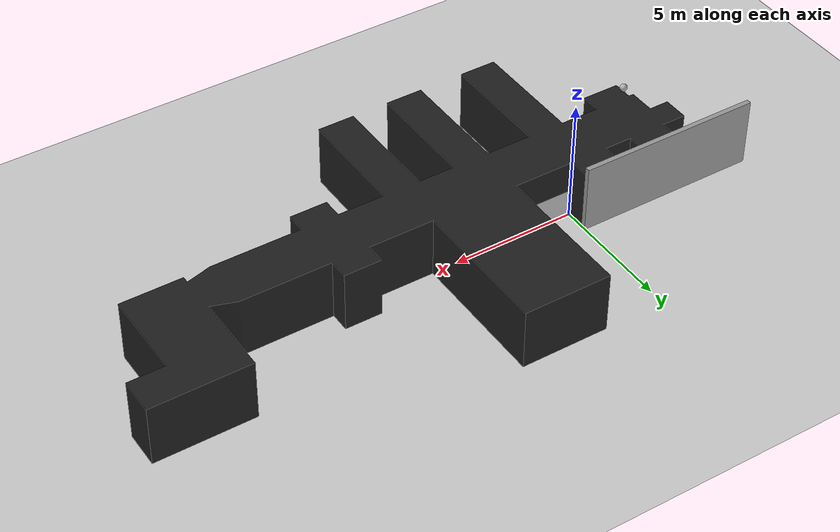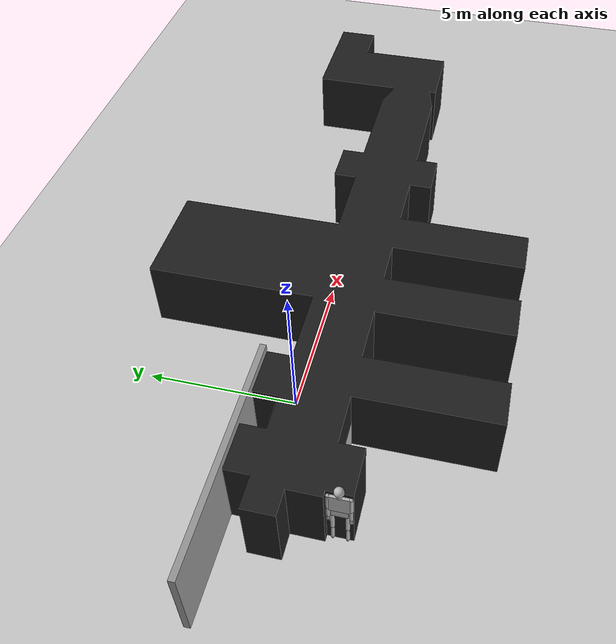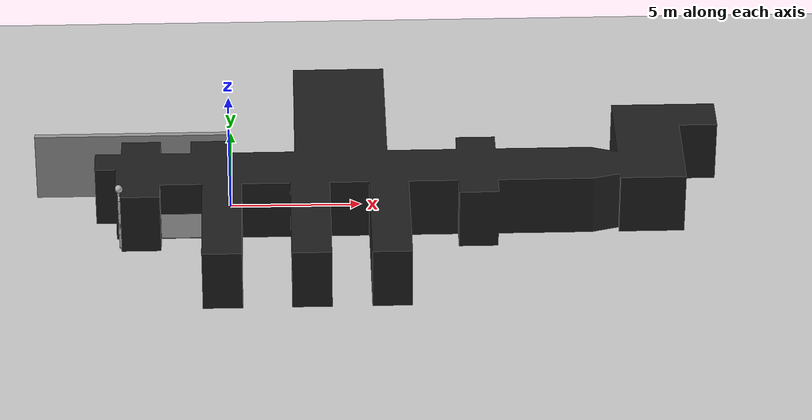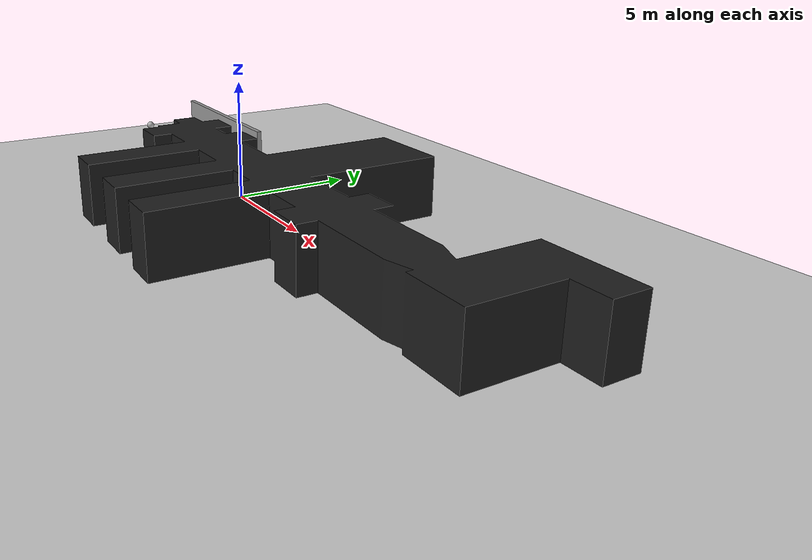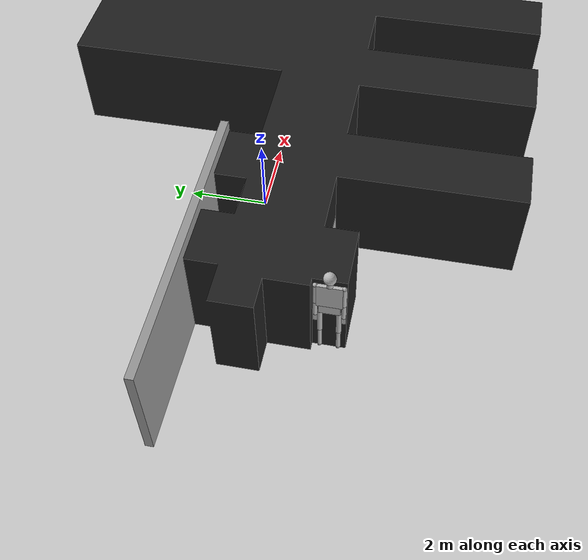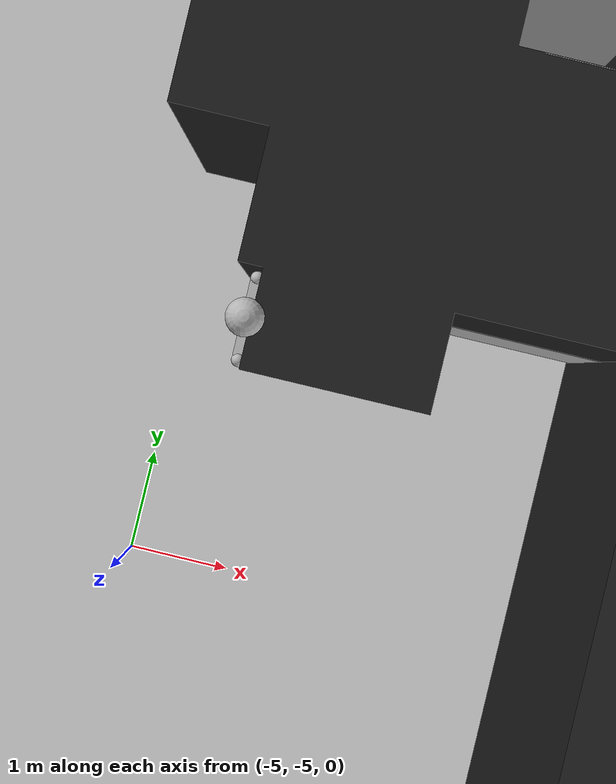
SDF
<sdf version="1.4">
 <world name="default">
  <light name="sun" type="directional">
   <pose>-1 -1 1.5 0 -0 0</pose>
   <diffuse>0.8 0.8 0.8 1</diffuse>
   <specular>0.2 0.2 0.2 1</specular>
   <attenuation>
    <range>1000</range>
    <constant>0.9</constant>
    <linear>0.01</linear>
    <quadratic>0.001</quadratic>
   </attenuation>
   <direction>-0.5 0 -1</direction>
  </light>
  <model name="ground_plane">
   <static>1</static>
   <link name="link">
    <collision name="collision">
     <geometry><plane><normal>0 0 1</normal><size>100 100</size></plane></geometry>
     <surface><friction><ode><mu>100</mu><mu2>50</mu2></ode></friction></surface>
    </collision>
    <visual name="visual">
     <cast_shadows>0</cast_shadows>
     <geometry><plane><normal>0 0 1</normal><size>100 100</size></plane></geometry>
     <material>
      <script><uri>file://media/materials/scripts/gazebo.material</uri><name>Gazebo/Grey</name></script>
     </material>
    </visual>
    <velocity_decay><linear>0</linear><angular>0</angular></velocity_decay>
    <gravity>0</gravity>
   </link>
  </model>
  <physics type="ode">
   <max_step_size>0.1</max_step_size>
   <real_time_factor>1</real_time_factor>
   <real_time_update_rate>10</real_time_update_rate>
   <max_contacts>3</max_contacts>
   <gravity>0 0 -9.8</gravity>
   <ode><solver><min_step_size>0.1</min_step_size><iters>1</iters></solver></ode>
  </physics>
  <scene><ambient>0.4 0.4 0.4 1</ambient><background>0.7 0.7 0.7 1</background><shadows>1</shadows></scene>
  <model name="lab_with_windows_2">
   <static>1</static>
   <link name="link">
    <inertial><mass>1000</mass></inertial>
    <visual name="visual">
     <geometry><mesh><uri>model://lab_with_windows/meshes/lab_with_windows.stl</uri></mesh></geometry>
     <material><script><name>Gazebo/Black</name><uri>__default__</uri></script></material>
    </visual>
    <velocity_decay><linear>0</linear><angular>0</angular></velocity_decay>
    <gravity>0</gravity>
   </link>
  </model>
  <model name="grey_wall">
   <static>1</static>
   <link name="link">
    <pose>0 0 1.4 0 -0 0</pose>
    <visual name="visual">
     <cast_shadows>0</cast_shadows>
     <geometry><box><size>7.5 0.2 2.8</size></box></geometry>
     <material>
      <script>
       <uri>model://grey_wall/materials/scripts</uri>
       <uri>model://grey_wall/materials/textures</uri>
       <name>vrc/grey_wall</name>
      </script>
     </material>
    </visual>
    <velocity_decay><linear>0</linear><angular>0</angular></velocity_decay>
    <gravity>0</gravity>
   </link>
   <pose>-3.73994 0.894219 0 0 -0 0</pose>
  </model>
  <model name="ragdoll">
   <pose>-4.18583 -2.49475 1.39995 0 -0 0</pose>
   <link name="hip">
    <inertial>
     <inertia><ixx>0.1</ixx><ixy>0</ixy><ixz>0</ixz><iyy>0.1</iyy><iyz>0</iyz><izz>0.1</izz></inertia>
     <mass>10</mass>
    </inertial>
    <visual name="hip_geom_visual">
     <pose>0 0 0.125 0 -0 0</pose>
     <geometry><box><size>0.1 0.5 0.25</size></box></geometry>
    </visual>
    <gravity>0</gravity>
    <velocity_decay><linear>0</linear><angular>0</angular></velocity_decay>
   </link>
   <link name="l_thigh_pan">
    <pose>0 0.22 0 0 -0 0</pose>
    <inertial>
     <inertia><ixx>0.01</ixx><ixy>0</ixy><ixz>0</ixz><iyy>0.01</iyy><iyz>0</iyz><izz>0.01</izz></inertia>
     <mass>1</mass>
    </inertial>
    <visual name="l_thigh_pan_geom_visual">
     <pose>0 0 -0.03 0 -0 0</pose>
     <geometry><sphere><radius>0.06</radius></sphere></geometry>
    </visual>
    <gravity>0</gravity>
    <velocity_decay><linear>0</linear><angular>0</angular></velocity_decay>
   </link>
   <link name="l_thigh_lift">
    <pose>0 0.22 0 0 -0 0</pose>
    <inertial>
     <inertia><ixx>0.05</ixx><ixy>0</ixy><ixz>0</ixz><iyy>0.05</iyy><iyz>0</iyz><izz>0.05</izz></inertia>
     <mass>5</mass>
    </inertial>
    <visual name="l_thigh_lift_geom_visual">
     <pose>0 0 -0.35 0 -0 0</pose>
     <geometry><cylinder><radius>0.06</radius><length>0.7</length></cylinder></geometry>
    </visual>
    <gravity>0</gravity>
    <velocity_decay><linear>0</linear><angular>0</angular></velocity_decay>
   </link>
   <link name="l_calf">
    <pose>0 0.22 -0.7 0 -0 0</pose>
    <inertial>
     <inertia><ixx>0.02</ixx><ixy>0</ixy><ixz>0</ixz><iyy>0.02</iyy><iyz>0</iyz><izz>0.02</izz></inertia>
     <mass>2</mass>
    </inertial>
    <visual name="l_calf_geom_visual">
     <pose>0 0 -0.3 0 -0 0</pose>
     <geometry><cylinder><radius>0.05</radius><length>0.6</length></cylinder></geometry>
    </visual>
    <gravity>0</gravity>
    <velocity_decay><linear>0</linear><angular>0</angular></velocity_decay>
   </link>
   <link name="l_ankle">
    <pose>0 0.22 -1.325 0 -0 0</pose>
    <inertial>
     <inertia><ixx>0.01</ixx><ixy>0</ixy><ixz>0</ixz><iyy>0.01</iyy><iyz>0</iyz><izz>0.01</izz></inertia>
     <mass>1</mass>
    </inertial>
    <visual name="l_ankle_geom_visual"><geometry><sphere><radius>0.05</radius></sphere></geometry></visual>
    <gravity>0</gravity>
    <velocity_decay><linear>0</linear><angular>0</angular></velocity_decay>
   </link>
   <link name="l_foot">
    <pose>0 0.22 -1.35 0 -0 0</pose>
    <inertial>
     <pose>0.1 0 0 0 -0 0</pose>
     <inertia><ixx>0.01</ixx><ixy>0</ixy><ixz>0</ixz><iyy>0.01</iyy><iyz>0</iyz><izz>0.01</izz></inertia>
     <mass>1</mass>
    </inertial>
    <visual name="l_foot_geom_visual">
     <pose>0.1 0 -0.025 0 -0 0</pose>
     <geometry><box><size>0.2 0.03 0.05</size></box></geometry>
    </visual>
    <gravity>0</gravity>
    <velocity_decay><linear>0</linear><angular>0</angular></velocity_decay>
   </link>
   <link name="r_thigh_pan">
    <pose>0 -0.22 0 0 -0 0</pose>
    <inertial>
     <inertia><ixx>0.01</ixx><ixy>0</ixy><ixz>0</ixz><iyy>0.01</iyy><iyz>0</iyz><izz>0.01</izz></inertia>
     <mass>1</mass>
    </inertial>
    <visual name="r_thigh_pan_geom_visual">
     <pose>0 0 -0.03 0 -0 0</pose>
     <geometry><sphere><radius>0.06</radius></sphere></geometry>
    </visual>
    <gravity>0</gravity>
    <velocity_decay><linear>0</linear><angular>0</angular></velocity_decay>
   </link>
   <link name="r_thigh_lift">
    <pose>0 -0.22 0 0 -0 0</pose>
    <inertial>
     <inertia><ixx>0.05</ixx><ixy>0</ixy><ixz>0</ixz><iyy>0.05</iyy><iyz>0</iyz><izz>0.05</izz></inertia>
     <mass>5</mass>
    </inertial>
    <visual name="r_thigh_lift_geom_visual">
     <pose>0 0 -0.35 0 -0 0</pose>
     <geometry><cylinder><radius>0.06</radius><length>0.7</length></cylinder></geometry>
    </visual>
    <gravity>0</gravity>
    <velocity_decay><linear>0</linear><angular>0</angular></velocity_decay>
   </link>
   <link name="r_calf">
    <pose>0 -0.22 -0.7 0 -0 0</pose>
    <inertial>
     <inertia><ixx>0.02</ixx><ixy>0</ixy><ixz>0</ixz><iyy>0.02</iyy><iyz>0</iyz><izz>0.02</izz></inertia>
     <mass>2</mass>
    </inertial>
    <visual name="r_calf_geom_visual">
     <pose>0 0 -0.3 0 -0 0</pose>
     <geometry><cylinder><radius>0.05</radius><length>0.6</length></cylinder></geometry>
    </visual>
    <gravity>0</gravity>
    <velocity_decay><linear>0</linear><angular>0</angular></velocity_decay>
   </link>
   <link name="r_ankle">
    <pose>0 -0.22 -1.325 0 -0 0</pose>
    <inertial>
     <inertia><ixx>0.01</ixx><ixy>0</ixy><ixz>0</ixz><iyy>0.01</iyy><iyz>0</iyz><izz>0.01</izz></inertia>
     <mass>1</mass>
    </inertial>
    <visual name="r_ankle_geom_visual"><geometry><sphere><radius>0.05</radius></sphere></geometry></visual>
    <gravity>0</gravity>
    <velocity_decay><linear>0</linear><angular>0</angular></velocity_decay>
   </link>
   <link name="r_foot">
    <pose>0 -0.22 -1.35 0 -0 0</pose>
    <inertial>
     <pose>0.1 0 0 0 -0 0</pose>
     <inertia><ixx>0.01</ixx><ixy>0</ixy><ixz>0</ixz><iyy>0.01</iyy><iyz>0</iyz><izz>0.01</izz></inertia>
     <mass>1</mass>
    </inertial>
    <visual name="r_foot_geom_visual">
     <pose>0.1 0 -0.025 0 -0 0</pose>
     <geometry><box><size>0.2 0.03 0.05</size></box></geometry>
    </visual>
    <gravity>0</gravity>
    <velocity_decay><linear>0</linear><angular>0</angular></velocity_decay>
   </link>
   <link name="torso">
    <pose>0 0 0.25 0 -0 0</pose>
    <inertial>
     <inertia><ixx>0.3</ixx><ixy>0</ixy><ixz>0</ixz><iyy>0.3</iyy><iyz>0</iyz><izz>0.3</izz></inertia>
     <mass>30</mass>
    </inertial>
    <visual name="torso_geom_visual">
     <pose>0 0 0.35 0 -0 0</pose>
     <geometry><box><size>0.1 0.6 0.7</size></box></geometry>
    </visual>
    <gravity>0</gravity>
    <velocity_decay><linear>0</linear><angular>0</angular></velocity_decay>
   </link>
   <link name="l_shoulder">
    <pose>0 0.3275 0.9225 0 -0 0</pose>
    <inertial>
     <inertia><ixx>0.01</ixx><ixy>0</ixy><ixz>0</ixz><iyy>0.01</iyy><iyz>0</iyz><izz>0.01</izz></inertia>
     <mass>1</mass>
    </inertial>
    <visual name="l_shoulder_geom_visual"><geometry><sphere><radius>0.055</radius></sphere></geometry></visual>
    <gravity>0</gravity>
    <velocity_decay><linear>0</linear><angular>0</angular></velocity_decay>
   </link>
   <link name="l_upper_arm">
    <pose>0 0.3275 0.9225 0 -0 0</pose>
    <inertial>
     <inertia><ixx>0.02</ixx><ixy>0</ixy><ixz>0</ixz><iyy>0.02</iyy><iyz>0</iyz><izz>0.02</izz></inertia>
     <mass>2</mass>
    </inertial>
    <visual name="l_upper_arm_geom_visual">
     <pose>0 0 -0.3 0 -0 0</pose>
     <geometry><cylinder><radius>0.055</radius><length>0.6</length></cylinder></geometry>
    </visual>
    <gravity>0</gravity>
    <velocity_decay><linear>0</linear><angular>0</angular></velocity_decay>
   </link>
   <link name="l_forearm">
    <pose>0 0.3275 0.3225 0 -0 0</pose>
    <inertial>
     <inertia><ixx>0.01</ixx><ixy>0</ixy><ixz>0</ixz><iyy>0.01</iyy><iyz>0</iyz><izz>0.01</izz></inertia>
     <mass>1</mass>
    </inertial>
    <visual name="l_forearm_geom_visual">
     <pose>0 0 -0.225 0 -0 0</pose>
     <geometry><cylinder><radius>0.05</radius><length>0.45</length></cylinder></geometry>
    </visual>
    <gravity>0</gravity>
    <velocity_decay><linear>0</linear><angular>0</angular></velocity_decay>
   </link>
   <link name="l_wrist">
    <pose>0 0.3275 -0.1425 0 -0 0</pose>
    <inertial>
     <inertia><ixx>0.01</ixx><ixy>0</ixy><ixz>0</ixz><iyy>0.01</iyy><iyz>0</iyz><izz>0.01</izz></inertia>
     <mass>1</mass>
    </inertial>
    <visual name="l_wrist_geom_visual"><geometry><sphere><radius>0.03</radius></sphere></geometry></visual>
    <gravity>0</gravity>
    <velocity_decay><linear>0</linear><angular>0</angular></velocity_decay>
   </link>
   <link name="l_hand">
    <pose>0 0.3275 -0.1575 0 -0 0</pose>
    <inertial>
     <inertia><ixx>0.01</ixx><ixy>0</ixy><ixz>0</ixz><iyy>0.01</iyy><iyz>0</iyz><izz>0.01</izz></inertia>
     <mass>1</mass>
    </inertial>
    <visual name="l_hand_geom_visual">
     <pose>0 0 -0.1 0 -0 0</pose>
     <geometry><box><size>0.03 0.1 0.2</size></box></geometry>
    </visual>
    <gravity>0</gravity>
    <velocity_decay><linear>0</linear><angular>0</angular></velocity_decay>
   </link>
   <link name="neck">
    <pose>0 0 0.95 0 -0 0</pose>
    <inertial>
     <inertia><ixx>0.01</ixx><ixy>0</ixy><ixz>0</ixz><iyy>0.01</iyy><iyz>0</iyz><izz>0.01</izz></inertia>
     <mass>1</mass>
    </inertial>
    <visual name="neck_geom_visual">
     <pose>0 0 0.1 0 -0 0</pose>
     <geometry><cylinder><radius>0.075</radius><length>0.2</length></cylinder></geometry>
    </visual>
    <gravity>0</gravity>
    <velocity_decay><linear>0</linear><angular>0</angular></velocity_decay>
   </link>
   <link name="head">
    <pose>0 0 1.225 0 -0 0</pose>
    <inertial>
     <inertia><ixx>0.1</ixx><ixy>0</ixy><ixz>0</ixz><iyy>0.1</iyy><iyz>0</iyz><izz>0.1</izz></inertia>
     <mass>10</mass>
    </inertial>
    <visual name="head_geom_visual"><geometry><sphere><radius>0.15</radius></sphere></geometry></visual>
    <gravity>0</gravity>
    <velocity_decay><linear>0</linear><angular>0</angular></velocity_decay>
   </link>
   <link name="r_shoulder">
    <pose>0 -0.3275 0.9225 0 -0 0</pose>
    <inertial>
     <inertia><ixx>0.01</ixx><ixy>0</ixy><ixz>0</ixz><iyy>0.01</iyy><iyz>0</iyz><izz>0.01</izz></inertia>
     <mass>1</mass>
    </inertial>
    <visual name="r_shoulder_geom_visual"><geometry><sphere><radius>0.055</radius></sphere></geometry></visual>
    <gravity>0</gravity>
    <velocity_decay><linear>0</linear><angular>0</angular></velocity_decay>
   </link>
   <link name="r_upper_arm">
    <pose>0 -0.3275 0.9225 0 -0 0</pose>
    <inertial>
     <inertia><ixx>0.02</ixx><ixy>0</ixy><ixz>0</ixz><iyy>0.02</iyy><iyz>0</iyz><izz>0.02</izz></inertia>
     <mass>2</mass>
    </inertial>
    <visual name="r_upper_arm_geom_visual">
     <pose>0 0 -0.3 0 -0 0</pose>
     <geometry><cylinder><radius>0.055</radius><length>0.6</length></cylinder></geometry>
    </visual>
    <gravity>0</gravity>
    <velocity_decay><linear>0</linear><angular>0</angular></velocity_decay>
   </link>
   <link name="r_forearm">
    <pose>0 -0.3275 0.3225 0 -0 0</pose>
    <inertial>
     <inertia><ixx>0.01</ixx><ixy>0</ixy><ixz>0</ixz><iyy>0.01</iyy><iyz>0</iyz><izz>0.01</izz></inertia>
     <mass>1</mass>
    </inertial>
    <visual name="r_forearm_geom_visual">
     <pose>0 0 -0.225 0 -0 0</pose>
     <geometry><cylinder><radius>0.05</radius><length>0.45</length></cylinder></geometry>
    </visual>
    <gravity>0</gravity>
    <velocity_decay><linear>0</linear><angular>0</angular></velocity_decay>
   </link>
   <link name="r_wrist">
    <pose>0 -0.3275 -0.1425 0 -0 0</pose>
    <inertial>
     <inertia><ixx>0.01</ixx><ixy>0</ixy><ixz>0</ixz><iyy>0.01</iyy><iyz>0</iyz><izz>0.01</izz></inertia>
     <mass>1</mass>
    </inertial>
    <visual name="r_wrist_geom_visual"><geometry><sphere><radius>0.03</radius></sphere></geometry></visual>
    <gravity>0</gravity>
    <velocity_decay><linear>0</linear><angular>0</angular></velocity_decay>
   </link>
   <link name="r_hand">
    <pose>0 -0.3275 -0.1575 0 -0 0</pose>
    <inertial>
     <inertia><ixx>0.01</ixx><ixy>0</ixy><ixz>0</ixz><iyy>0.01</iyy><iyz>0</iyz><izz>0.01</izz></inertia>
     <mass>1</mass>
    </inertial>
    <visual name="r_hand_geom_visual">
     <pose>0 0 -0.1 0 -0 0</pose>
     <geometry><box><size>0.03 0.1 0.2</size></box></geometry>
    </visual>
    <gravity>0</gravity>
    <velocity_decay><linear>0</linear><angular>0</angular></velocity_decay>
   </link>
   <joint name="l_thigh_pan_joint" type="revolute">
    <parent>hip</parent>
    <child>l_thigh_pan</child>
    <axis>
     <dynamics><damping>0</damping><friction>0</friction></dynamics>
     <limit><lower>-1.5708</lower><upper>1.5708</upper><effort>0</effort><velocity>0</velocity></limit>
     <xyz>0 0 1</xyz>
    </axis>
   </joint>
   <joint name="l_thigh_lift_joint" type="revolute">
    <parent>l_thigh_pan</parent>
    <child>l_thigh_lift</child>
    <axis>
     <dynamics><damping>0</damping><friction>0</friction></dynamics>
     <limit><lower>-1.5708</lower><upper>1.5708</upper><effort>0</effort><velocity>0</velocity></limit>
     <xyz>0 1 0</xyz>
    </axis>
   </joint>
   <joint name="l_calf_joint" type="revolute">
    <parent>l_thigh_lift</parent>
    <child>l_calf</child>
    <axis>
     <dynamics><damping>0</damping><friction>0</friction></dynamics>
     <limit><lower>-1.5708</lower><upper>1.5708</upper><effort>0</effort><velocity>0</velocity></limit>
     <xyz>0 1 0</xyz>
    </axis>
   </joint>
   <joint name="l_ankle_joint" type="revolute">
    <parent>l_calf</parent>
    <child>l_ankle</child>
    <axis>
     <dynamics><damping>0</damping><friction>0</friction></dynamics>
     <limit><lower>-1.5708</lower><upper>1.5708</upper><effort>0</effort><velocity>0</velocity></limit>
     <xyz>0 1 0</xyz>
    </axis>
   </joint>
   <joint name="l_foot_joint" type="revolute">
    <parent>l_ankle</parent>
    <child>l_foot</child>
    <axis>
     <dynamics><damping>0</damping><friction>0</friction></dynamics>
     <limit><lower>-1.5708</lower><upper>1.5708</upper><effort>0</effort><velocity>0</velocity></limit>
     <xyz>1 0 0</xyz>
    </axis>
   </joint>
   <joint name="r_thigh_pan_joint" type="revolute">
    <parent>hip</parent>
    <child>r_thigh_pan</child>
    <axis>
     <dynamics><damping>0</damping><friction>0</friction></dynamics>
     <limit><lower>-1.5708</lower><upper>1.5708</upper><effort>0</effort><velocity>0</velocity></limit>
     <xyz>0 0 1</xyz>
    </axis>
   </joint>
   <joint name="r_thigh_lift_joint" type="revolute">
    <parent>r_thigh_pan</parent>
    <child>r_thigh_lift</child>
    <axis>
     <dynamics><damping>0</damping><friction>0</friction></dynamics>
     <limit><lower>-1.5708</lower><upper>1.5708</upper><effort>0</effort><velocity>0</velocity></limit>
     <xyz>0 1 0</xyz>
    </axis>
   </joint>
   <joint name="r_calf_joint" type="revolute">
    <parent>r_thigh_lift</parent>
    <child>r_calf</child>
    <axis>
     <dynamics><damping>0</damping><friction>0</friction></dynamics>
     <limit><lower>-1.5708</lower><upper>1.5708</upper><effort>0</effort><velocity>0</velocity></limit>
     <xyz>0 1 0</xyz>
    </axis>
   </joint>
   <joint name="r_ankle_joint" type="revolute">
    <parent>r_calf</parent>
    <child>r_ankle</child>
    <axis>
     <dynamics><damping>0</damping><friction>0</friction></dynamics>
     <limit><lower>-1.5708</lower><upper>1.5708</upper><effort>0</effort><velocity>0</velocity></limit>
     <xyz>0 1 0</xyz>
    </axis>
   </joint>
   <joint name="r_foot_joint" type="revolute">
    <parent>r_ankle</parent>
    <child>r_foot</child>
    <axis>
     <dynamics><damping>0</damping><friction>0</friction></dynamics>
     <limit><lower>-1.5708</lower><upper>1.5708</upper><effort>0</effort><velocity>0</velocity></limit>
     <xyz>1 0 0</xyz>
    </axis>
   </joint>
   <joint name="torso_joint" type="revolute">
    <parent>hip</parent>
    <child>torso</child>
    <axis>
     <dynamics><damping>0</damping><friction>0</friction></dynamics>
     <limit><lower>-1.5708</lower><upper>1.5708</upper><effort>0</effort><velocity>0</velocity></limit>
     <xyz>0 1 0</xyz>
    </axis>
   </joint>
   <joint name="l_shoulder_joint" type="revolute">
    <parent>torso</parent>
    <child>l_shoulder</child>
    <axis>
     <dynamics><damping>0</damping><friction>0</friction></dynamics>
     <limit><lower>-1.5708</lower><upper>1.5708</upper><effort>0</effort><velocity>0</velocity></limit>
     <xyz>1 0 0</xyz>
    </axis>
   </joint>
   <joint name="l_upper_arm_joint" type="revolute">
    <parent>l_shoulder</parent>
    <child>l_upper_arm</child>
    <axis>
     <dynamics><damping>0</damping><friction>0</friction></dynamics>
     <limit><lower>-1.5708</lower><upper>1.5708</upper><effort>0</effort><velocity>0</velocity></limit>
     <xyz>0 1 0</xyz>
    </axis>
   </joint>
   <joint name="l_forearm_joint" type="revolute">
    <parent>l_upper_arm</parent>
    <child>l_forearm</child>
    <axis>
     <dynamics><damping>0</damping><friction>0</friction></dynamics>
     <limit><lower>-1.5708</lower><upper>1.5708</upper><effort>0</effort><velocity>0</velocity></limit>
     <xyz>0 1 0</xyz>
    </axis>
   </joint>
   <joint name="l_wrist_joint" type="revolute">
    <parent>l_forearm</parent>
    <child>l_wrist</child>
    <axis>
     <dynamics><damping>0</damping><friction>0</friction></dynamics>
     <limit><lower>-1.5708</lower><upper>1.5708</upper><effort>0</effort><velocity>0</velocity></limit>
     <xyz>0 1 0</xyz>
    </axis>
   </joint>
   <joint name="l_hand_joint" type="revolute">
    <parent>l_wrist</parent>
    <child>l_hand</child>
    <axis>
     <dynamics><damping>0</damping><friction>0</friction></dynamics>
     <limit><lower>-1.5708</lower><upper>1.5708</upper><effort>0</effort><velocity>0</velocity></limit>
     <xyz>0 1 0</xyz>
    </axis>
   </joint>
   <joint name="neck_joint" type="revolute">
    <parent>torso</parent>
    <child>neck</child>
    <axis>
     <dynamics><damping>0</damping><friction>0</friction></dynamics>
     <limit><lower>-1.5708</lower><upper>1.5708</upper><effort>0</effort><velocity>0</velocity></limit>
     <xyz>0 0 1</xyz>
    </axis>
   </joint>
   <joint name="head_joint" type="revolute">
    <parent>neck</parent>
    <child>head</child>
    <axis>
     <dynamics><damping>0</damping><friction>0</friction></dynamics>
     <limit><lower>-1.5708</lower><upper>1.5708</upper><effort>0</effort><velocity>0</velocity></limit>
     <xyz>0 1 0</xyz>
    </axis>
   </joint>
   <joint name="r_shoulder_joint" type="revolute">
    <parent>torso</parent>
    <child>r_shoulder</child>
    <axis>
     <dynamics><damping>0</damping><friction>0</friction></dynamics>
     <limit><lower>-1.5708</lower><upper>1.5708</upper><effort>0</effort><velocity>0</velocity></limit>
     <xyz>1 0 0</xyz>
    </axis>
   </joint>
   <joint name="r_upper_arm_joint" type="revolute">
    <parent>r_shoulder</parent>
    <child>r_upper_arm</child>
    <axis>
     <dynamics><damping>0</damping><friction>0</friction></dynamics>
     <limit><lower>-1.5708</lower><upper>1.5708</upper><effort>0</effort><velocity>0</velocity></limit>
     <xyz>0 1 0</xyz>
    </axis>
   </joint>
   <joint name="r_forearm_joint" type="revolute">
    <parent>r_upper_arm</parent>
    <child>r_forearm</child>
    <axis>
     <dynamics><damping>0</damping><friction>0</friction></dynamics>
     <limit><lower>-1.5708</lower><upper>1.5708</upper><effort>0</effort><velocity>0</velocity></limit>
     <xyz>0 1 0</xyz>
    </axis>
   </joint>
   <joint name="r_wrist_joint" type="revolute">
    <parent>r_forearm</parent>
    <child>r_wrist</child>
    <axis>
     <dynamics><damping>0</damping><friction>0</friction></dynamics>
     <limit><lower>-1.5708</lower><upper>1.5708</upper><effort>0</effort><velocity>0</velocity></limit>
     <xyz>0 1 0</xyz>
    </axis>
   </joint>
   <joint name="r_hand_joint" type="revolute">
    <parent>r_wrist</parent>
    <child>r_hand</child>
    <axis>
     <dynamics><damping>0</damping><friction>0</friction></dynamics>
     <limit><lower>-1.5708</lower><upper>1.5708</upper><effort>0</effort><velocity>0</velocity></limit>
     <xyz>0 1 0</xyz>
    </axis>
   </joint>
   <static>1</static>
  </model>
  <model name="wall_plumbing">
   <static>1</static>
   <link name="link">
    <visual name="visual">
     <cast_shadows>0</cast_shadows>
     <geometry><box><size>1.2036 2.49987 0.007</size></box></geometry>
     <material>
      <script>
       <uri>model://wall_plumbing/materials/scripts</uri>
       <uri>model://wall_plumbing/materials/textures</uri>
       <name>wall_plumbing</name>
      </script>
     </material>
    </visual>
    <velocity_decay><linear>0</linear><angular>0</angular></velocity_decay>
    <gravity>0</gravity>
   </link>
   <pose>1.25 0.00139 0.59 -4.8e-05 -1.5707 1.5707</pose>
  </model>
  <model name="electrical_drawing">
   <static>1</static>
   <link name="link">
    <visual name="visual">
     <geometry><box><size>1.09992 1.59928 0.007</size></box></geometry>
     <material>
      <script>
       <uri>model://electrical_drawing/materials/scripts</uri>
       <uri>model://electrical_drawing/materials/textures</uri>
       <name>electrical_drawing</name>
      </script>
     </material>
    </visual>
    <velocity_decay><linear>0</linear><angular>0</angular></velocity_decay>
    <gravity>0</gravity>
   </link>
   <pose>-1.85 -2.09 0.59 0 1.5707 -1.5707</pose>
  </model>
  <model name="fire_hose_reel">
   <static>1</static>
   <link name="link">
    <visual name="visual">
     <geometry><box><size>1.763 0.732 0.007</size></box></geometry>
     <material>
      <script>
       <uri>model://fire_hose_reel/materials/scripts</uri>
       <uri>model://fire_hose_reel/materials/textures</uri>
       <name>fire_hose_reel</name>
      </script>
     </material>
    </visual>
    <velocity_decay><linear>0</linear><angular>0</angular></velocity_decay>
    <gravity>0</gravity>
   </link>
   <pose>-2.07295 -0.007203 1.62 -4.8e-05 -1.5707 1.57075</pose>
  </model>
 </world>
</sdf>
